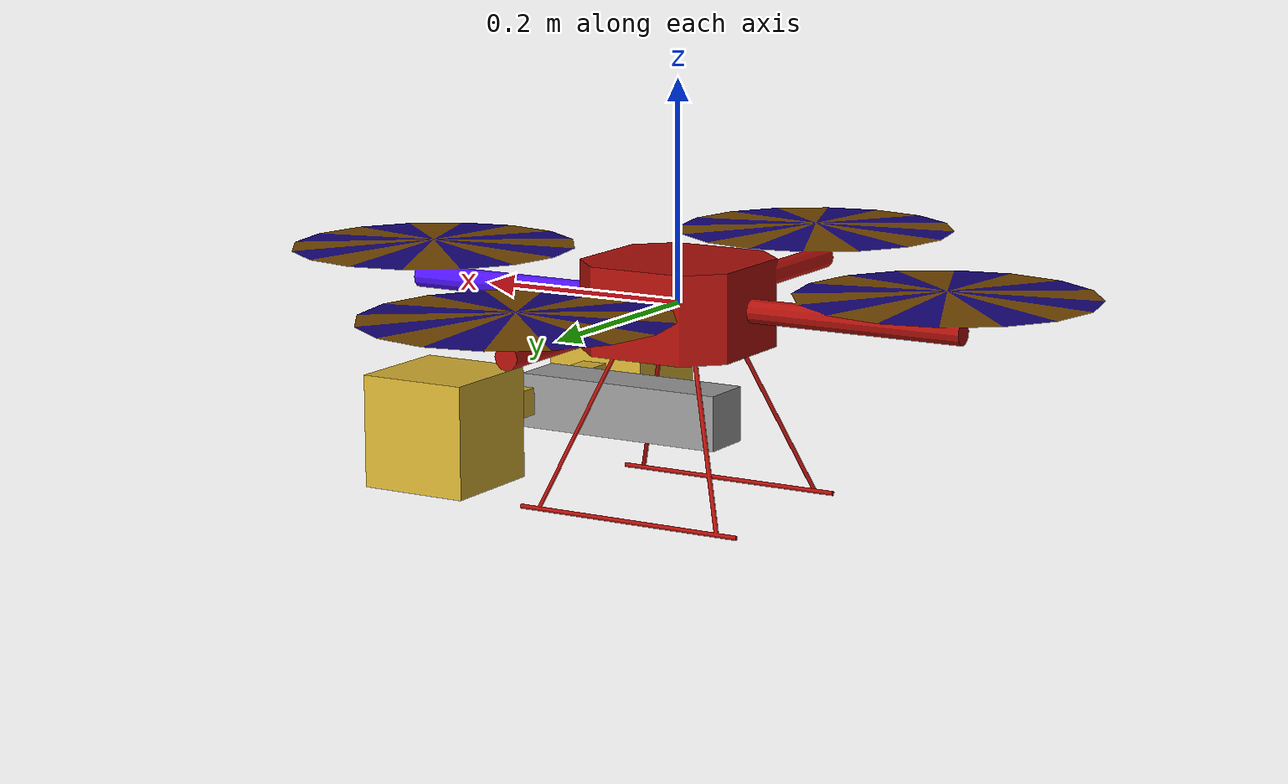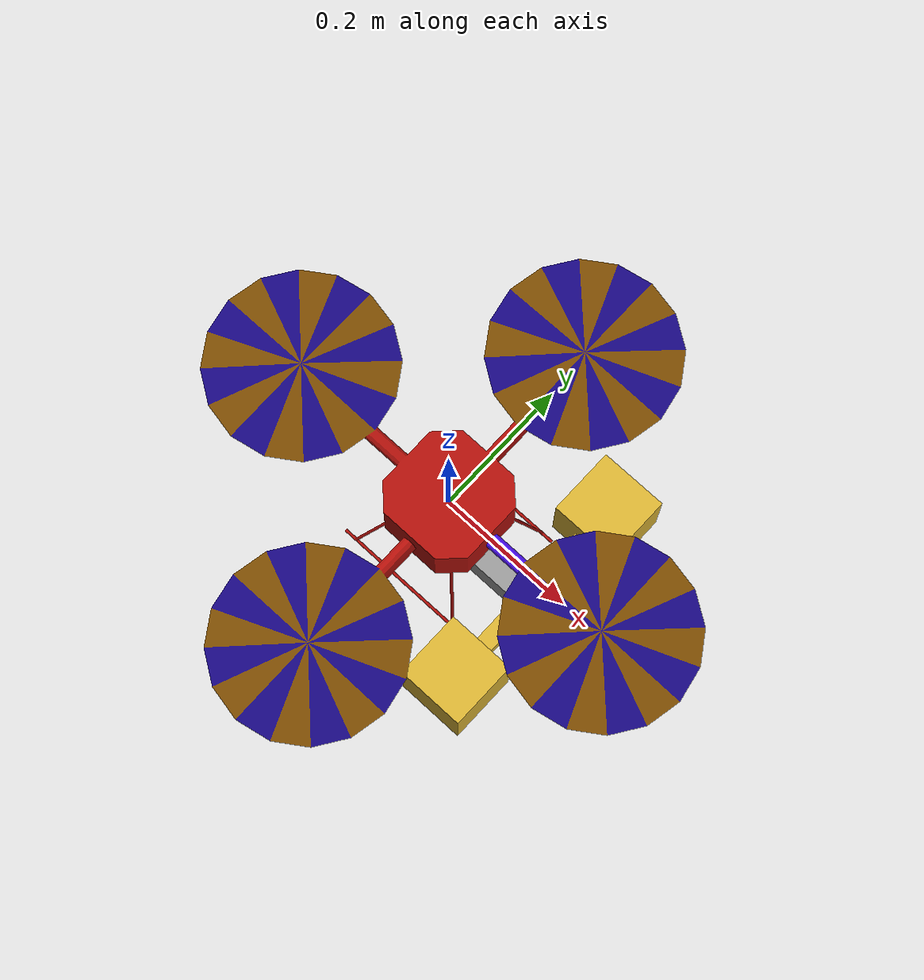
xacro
<?xml version="1.0"?>

<robot name="quadrotor" xmlns:xacro="http://www.ros.org/wiki/xacro">

    <xacro:property name="M_PI" value="3.1415926535897931" />

    <!-- Included URDF Files -->
    <xacro:include filename="$(find hector_quadrotor_description)/urdf/quadrotor_base_slave.urdf.xacro" />
    <xacro:include filename="$(find hector_quadrotor_description)/urdf/disable_quad_slave.urdf.xacro" />

    <!-- Instantiate quadrotor_base_slave_macro once (has no parameters atm) -->
    <xacro:quadrotor_base_slave_macro />
    <xacro:disable_quad_slave_macro />

    <!-- Downward facing camera -->
    <xacro:include filename="$(find hector_sensors_description)/urdf/generic_camera.urdf.xacro" />
    <xacro:generic_camera name="downward_cam_slave_01" parent="base_link" ros_topic="camera/image_slave_01" cam_info_topic="camera/camera_info_slave_01" update_rate="20" res_x="640" res_y="480" image_format="R8G8B8" hfov="100">
      <origin xyz="0.4 0.0 -0.0" rpy="0 ${M_PI/2} 0"/>
    </xacro:generic_camera>

    <xacro:include filename="$(find hector_quadrotor_description)/urdf/stereo_mast-triggered_slave.xacro" />
    <xacro:stereo_mast stereo_mast_parent_link="base_link"
                       mast_height="0.2"
                       hfov="70"
                       img_w="1638"
                       img_h="1024"
                       noise_stddev="0.015"
                       update_rate="1"
                       off_x="0.15" off_y="0.0" off_z="-0.10" />
</robot>

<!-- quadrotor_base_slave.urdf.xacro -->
<robot xmlns:xacro="http://www.ros.org/wiki/xacro">

  <xacro:property name="pi" value="3.1415926535897931" />

  <!-- Main quadrotor link -->
  <xacro:macro name="quadrotor_base_slave_macro">
    <link name="base_link">
      <inertial>
        <mass value="1.477" />
        <origin xyz="0 0 0" />
        <inertia ixx="0.01152" ixy="0.0" ixz="0.0" iyy="0.01152" iyz="0.0" izz="0.0218" />
      </inertial>

      <visual>
        <origin xyz="0 0 0" rpy="0 0 0" />
        <geometry>
          <mesh filename="package://hector_quadrotor_description/meshes/quadrotor/quadrotor_base_slave.dae"/>
        </geometry>
      </visual>

      <collision>
        <origin xyz="0 0 0" rpy="0 0 0" />
        <geometry>
          <mesh filename="package://hector_quadrotor_description/meshes/quadrotor/quadrotor_base.stl"/>
        </geometry>
      </collision>
    </link>
  </xacro:macro>
</robot>

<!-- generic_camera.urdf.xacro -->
<robot xmlns:xacro="http://www.ros.org/wiki/xacro">
  <xacro:arg name="simulator" default="gazebo"/>
  <xacro:property name="M_PI" value="3.1415926535897931" />

  <xacro:macro name="generic_camera" params="name parent *origin ros_topic cam_info_topic update_rate res_x res_y image_format hfov">
    <joint name="${name}_joint" type="fixed">
      <xacro:insert_block name="origin" />
      <parent link="${parent}"/>
      <child link="${name}_link"/>
    </joint>

    <link name="${name}_link">
    </link>

    <joint name="${name}_optical_joint" type="fixed">
      <origin xyz="0 0 0" rpy="${-M_PI/2} 0.0 ${-M_PI/2}" />
      <parent link="${name}_link" />
      <child link="${name}_optical_frame"/>
    </joint>

    <link name="${name}_optical_frame"/>
    <gazebo reference="${name}_link">
      <sensor type="camera" name="${name}_camera_sensor">
        <update_rate>${update_rate}</update_rate>
        <camera>
          <horizontal_fov>${hfov * M_PI/180.0}</horizontal_fov>
          <image>
            <format>${image_format}</format>
            <width>${res_x}</width>
            <height>${res_y}</height>
          </image>
          <clip>
            <near>0.01</near>
            <far>100</far>
          </clip>
        </camera>

        <xacro:if value="${'$(arg simulator)' == 'gazebo'}">
          <plugin name="${name}_camera_controller" filename="libgazebo_ros_camera.so">
            <cameraName>${name}</cameraName>
            <imageTopicName>${ros_topic}</imageTopicName>
            <cameraInfoTopicName>${cam_info_topic}</cameraInfoTopicName>
            <frameName>${name}_optical_frame</frameName>
          </plugin>
        </xacro:if>
      </sensor>
    </gazebo>
  </xacro:macro>

</robot>

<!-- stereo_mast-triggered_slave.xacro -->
<robot xmlns:xacro="http://ros.org/wiki/xacro" name="stereo_test_mast">

  <xacro:property name="Camera01Name"       value="NavCamStereoSlave" />
  <xacro:property name="Camera01UpdateRate" value="5" />
  <xacro:property name="camera_baseline"    value="0.30" />

  <xacro:property name="deg_to_rad"         value="0.0174533" />

  <xacro:macro name="stereo_mast" params="stereo_mast_parent_link mast_height hfov img_w img_h noise_stddev update_rate off_x off_y off_z">

  <link name="${Camera01Name}_mast_link">
    <collision>
      <origin rpy="0 0 0" xyz="0 0 ${mast_height/2}"/>
      <geometry>
        <box size="0.05 0.05 ${mast_height}"/>
      </geometry>
    </collision>
    <visual>
      <origin rpy="0 0 0" xyz="0 0 ${mast_height/2}"/>
      <geometry>
        <box size="0.05 0.05 ${mast_height}"/>
      </geometry>
      <material name="Grey"/>
    </visual>
    <inertial>
      <origin rpy="0 0 0" xyz="0 0 ${mast_height/2}"/>
      <mass value="0.2"/>
      <!-- inertia ixx="0.01" ixy="0.0" ixz="0.0" iyy="0.01" iyz="0.0" izz="0.01"/ -->
      <inertia
          ixx="${0.2 / 12.0 * (0.05*0.05 + mast_height*mast_height)}" ixy="0.0" ixz="0.0"
          iyy="${0.2 / 12.0 * (mast_height*mast_height + 0.05*0.05)}" iyz="0.0"
          izz="${0.2 / 12.0 * (0.05*0.05 + 0.05*0.05)}"/>
    </inertial>
  </link>
  <gazebo reference="${Camera01Name}_mast_link">
    <material>Gazebo/Grey</material>
  </gazebo>
  <joint name="${Camera01Name}_mast_joint" type="fixed">
    <parent link="${stereo_mast_parent_link}"/>
    <child link="${Camera01Name}_mast_link"/>
    <origin xyz="${off_x} ${off_y} ${off_z}" rpy="${pi} ${pi/2} 0" />
  </joint>

  <link name="${Camera01Name}_head_link">
    <collision>
      <origin xyz="0 0 0" rpy="0 0 0"/>
      <geometry>
        <box size="0.1 0.1 0.1"/>
      </geometry>
    </collision>
      <visual>
        <origin xyz="0 0 0"  rpy="0 0 0"/>
        <geometry>
          <box size="0.025 ${camera_baseline} 0.025"/>
        </geometry>
        <material name="Gold"/>
      </visual>
    <visual>
      <origin xyz="0 ${camera_baseline/2} 0"  rpy="0 0 0"/>
      <geometry>
        <box size="0.1 0.1 0.1"/>
      </geometry>
      <material name="Gold"/>
    </visual>
    <visual>
      <origin xyz="0 -${camera_baseline/2} 0"  rpy="0 0 0"/>
      <geometry>
        <box size="0.1 0.1 0.1"/>
      </geometry>
      <material name="Gold"/>
    </visual>
    <inertial>
      <mass value="0.05" />
      <origin xyz="0 0 0" rpy="0 0 0"/>
      <inertia ixx="0.1" ixy="0" ixz="0" iyy="0.1" iyz="0" izz="0.1" />

   </inertial>
  </link>

  <!-- example for stereo setup is here: -->
  <!-- https://bitbucket.org/osrf/drcsim/src/52a691b8956045442ef22ba0aaee4520716807ff/multisense_sl_description/urdf/multisense_sl.urdf?at=default#cl-200 -->
  <!-- https://bitbucket.org/osrf/drcsim/src/52a691b8956045442ef22ba0aaee4520716807ff/drcsim_gazebo/launch/atlas_bringup.launch?at=default#cl-38 -->

  <gazebo reference="${Camera01Name}Left_link"/>
  <link name="${Camera01Name}Left_link"/>
  <link name="${Camera01Name}Left_optical_frame"/>
  <joint name="leftCamera_joint" type="fixed">
    <origin xyz="0.0 ${camera_baseline/2} 0.0" rpy="0 0 0"/>
    <parent link="${Camera01Name}_head_link"/>
    <child link="${Camera01Name}Left_link"/>
  </joint>
  <joint name="leftCamera_optical_joint" type="fixed">
    <origin xyz="0.0 0.0 0.0" rpy="-${pi/2.0} 0 -${pi/2.0}"/>
    <parent link="${Camera01Name}Left_link"/>
    <child link="${Camera01Name}Left_optical_frame"/>
  </joint>

  <gazebo reference="${Camera01Name}Right_link"/>
  <link name="${Camera01Name}Right_link"/>
  <link name="${Camera01Name}Right_optical_frame"/>
  <joint name="rightCamera_joint" type="fixed">
    <origin xyz="0.0 -${camera_baseline/2} 0.0" rpy="0 0 0"/>
    <parent link="${Camera01Name}_head_link"/>
    <child link="${Camera01Name}Right_link"/>
  </joint>
  <joint name="rightCamera_optical_joint" type="fixed">
    <origin xyz="0.0 0.0 0.0" rpy="-${pi/2.0} 0 -${pi/2.0}"/>
    <parent link="${Camera01Name}Right_link"/>
    <child link="${Camera01Name}Right_optical_frame"/>
  </joint>

  <gazebo reference="${Camera01Name}Left_link">
    <material>Gazebo/Red</material>
    <sensor type="multicamera" name="${Camera01Name}">
      <update_rate>${update_rate}</update_rate>
      <always_on>0</always_on>
      <camera name="left">
        <horizontal_fov>${hfov*deg_to_rad}</horizontal_fov>
        <image>
          <width>${img_w}</width>
          <height>${img_h}</height>
          <format>R8G8B8</format>
        </image>
        <clip>
          <near>0.2</near>
          <far>50000</far>
        </clip>
        <noise>
          <type>gaussian</type>
          <mean>0.0</mean>
          <stddev>${noise_stddev}</stddev>
        </noise>
      </camera>

      <camera name="right">
        <pose>0 -${camera_baseline} 0 0 0 0</pose>
         <horizontal_fov>${hfov*deg_to_rad}</horizontal_fov>
        <image>
          <width>${img_w}</width>
          <height>${img_h}</height>
          <format>R8G8B8</format>
        </image>
        <clip>
          <near>0.2</near>
          <far>50000</far>
        </clip>
        <noise>
          <type>gaussian</type>
          <mean>0.0</mean>
          <stddev>${noise_stddev}</stddev>
        </noise>
      </camera>

      <plugin name="stereo_camera_controller" filename="libgazebo_ros_triggered_multicamera.so">
        <cameraName>${Camera01Name}</cameraName>
        <alwaysOn>true</alwaysOn>
        <triggerTopicName>image_trigger</triggerTopicName>
        <updateRate>0.0</updateRate>
        <imageTopicName>image_raw</imageTopicName>
        <cameraInfoTopicName>camera_info</cameraInfoTopicName>
        <frameName>${Camera01Name}Left_optical_frame</frameName>
        <hackBaseline>${camera_baseline}</hackBaseline>
        <distortionK1>0.0</distortionK1>
        <distortionK2>0.0</distortionK2>
        <distortionK3>0.0</distortionK3>
        <distortionT1>0.0</distortionT1>
        <distortionT2>0.0</distortionT2>
      </plugin>
    </sensor>
  </gazebo>

  <!-- "Center Camera" for "video" -->
  <gazebo reference="${Camera01Name}Center_link"/>
  <link name="${Camera01Name}Center_link"/>
  <link name="${Camera01Name}Center_optical_frame"/>
  <joint name="CenterCamera_joint" type="fixed">
    <origin xyz="0.025 0.0 0.0" rpy="0 0 0"/>
    <parent link="${Camera01Name}_head_link"/>
    <child link="${Camera01Name}Center_link"/>
  </joint>
  <joint name="CenterCamera_optical_joint" type="fixed">
    <origin xyz="0.0 0.0 0.0" rpy="-${pi/2.0} 0 -${pi/2.0}"/>
    <parent link="${Camera01Name}Center_link"/>
    <child link="${Camera01Name}Center_optical_frame"/>
  </joint>

  <gazebo reference="${Camera01Name}Center_link">
    <material>Gazebo/Blue</material>
    <sensor type="camera" name="${Camera01Name}Video">
      <update_rate>30.0</update_rate>
      <camera name="head">
        <horizontal_fov>1.3962634</horizontal_fov>
        <image>
          <width>1280</width>
          <height>720</height>
          <format>R8G8B8</format>
        </image>
        <clip>
          <near>1.0</near>
          <far>10000</far>
        </clip>
        <noise>
          <type>gaussian</type>
          <mean>0.0</mean>
          <stddev>0.007</stddev>
        </noise>
      </camera>

      <plugin name="camera_controller" filename="libgazebo_ros_camera.so">
        <alwaysOn>true</alwaysOn>
        <updateRate>0.0</updateRate>
        <cameraName>${Camera01Name}Video</cameraName>
        <imageTopicName>image_raw</imageTopicName>
        <cameraInfoTopicName>camera_info</cameraInfoTopicName>
        <frameName>camera_link</frameName>
        <hackBaseline>0.07</hackBaseline>
        <distortionK1>0.0</distortionK1>
        <distortionK2>0.0</distortionK2>
        <distortionK3>0.0</distortionK3>
        <distortionT1>0.0</distortionT1>
        <distortionT2>0.0</distortionT2>
      </plugin>
    </sensor>
  </gazebo>

  <!-- Camera Joint -->
  <joint name="${Camera01Name}_camera_joint" type="fixed">
    <axis xyz="0 1 0" />
    <parent link="${Camera01Name}_mast_link"/>
    <child link="${Camera01Name}_head_link"/>
  </joint>

  </xacro:macro>
</robot>
